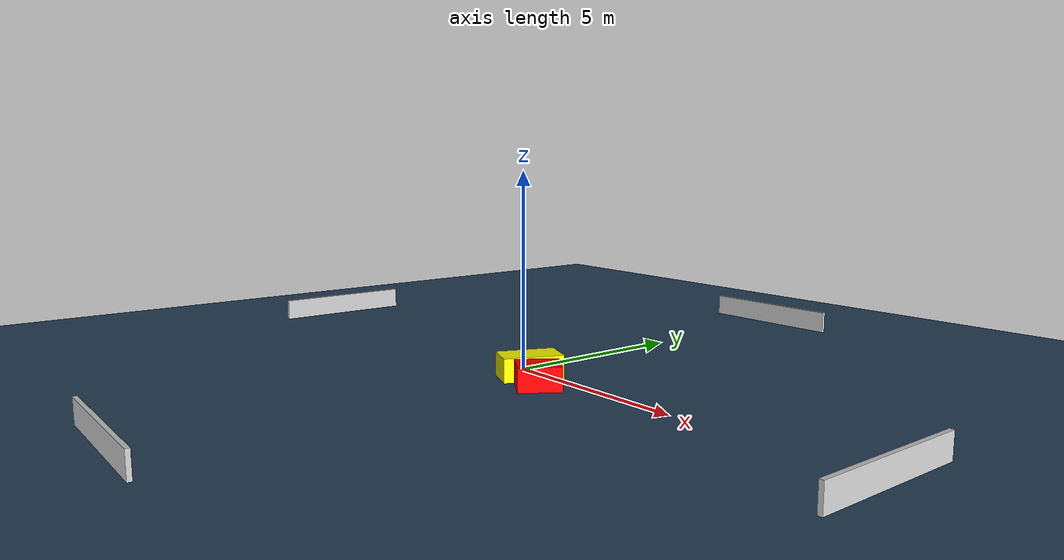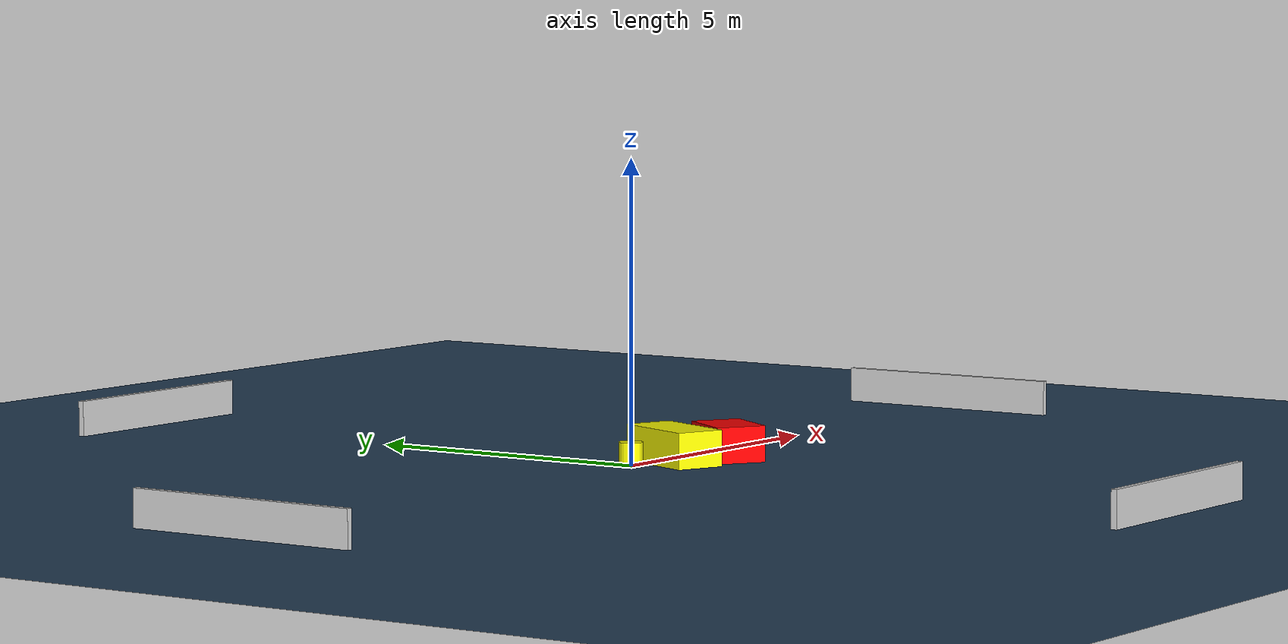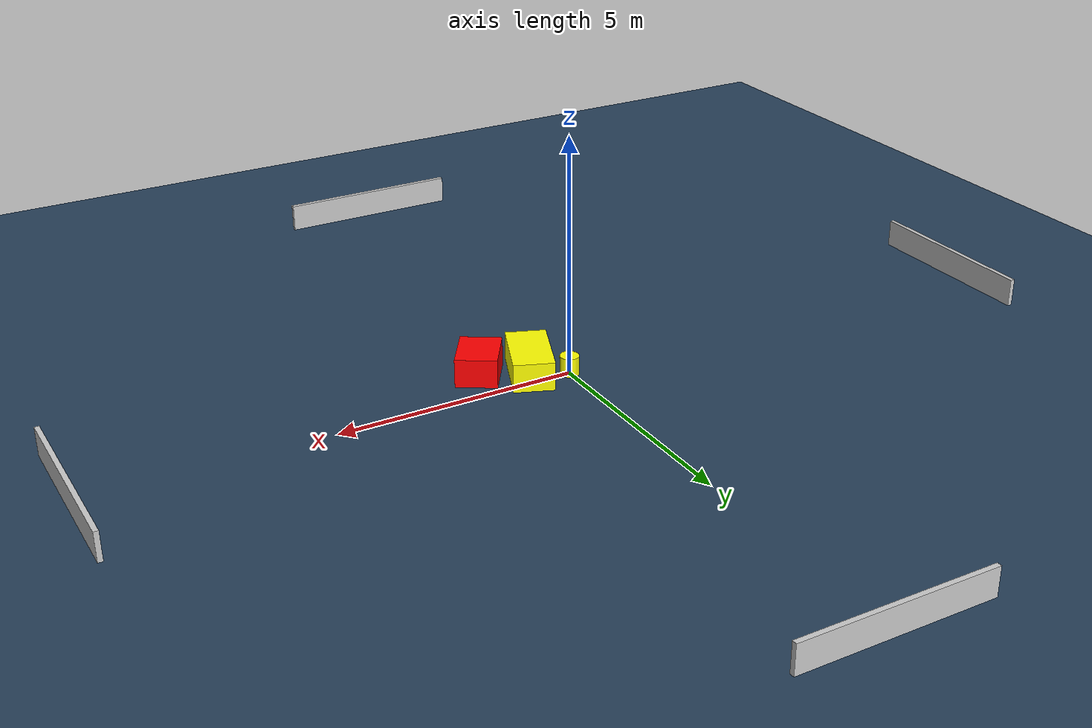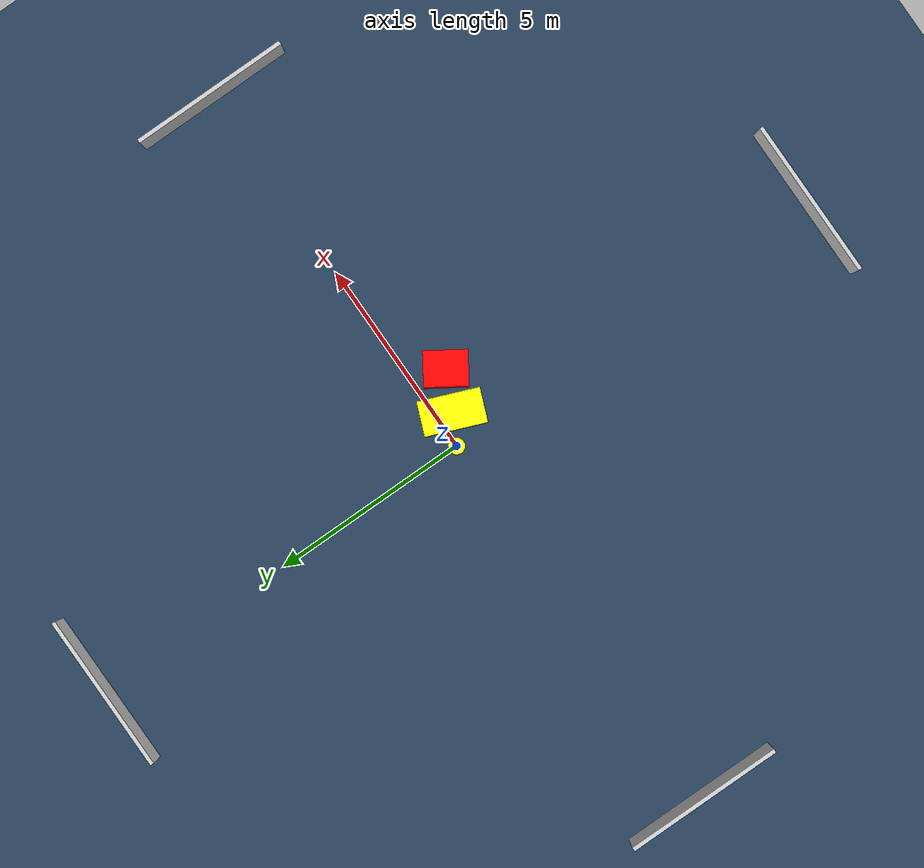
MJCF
<?xml version="1.0" ?>
<mujoco model="generated_environment">
  <option timestep="0.01" integrator="RK4" cone="elliptic"/>
  <default>
    <geom density="1"/>
  </default>
  <asset>
    <texture builtin="gradient" height="3072" name="skybox" rgb1="0.3 0.5 0.7" rgb2="0 0 0" type="skybox" width="512"/>
    <texture builtin="checker" height="300" name="groundplane" rgb1="0.2 0.3 0.4" rgb2="0.1 0.2 0.3" type="2d" width="300"/>
    <material name="groundplane" reflectance="0.2" texrepeat="5 5" texture="groundplane"/>
  </asset>
  <worldbody>
    <light dir="0 0 -1" directional="true" pos="0 0 1.5"/>
    <geom condim="3" friction="0.5 0.005 0.001" material="groundplane" name="floor" pos="0 0 0" size="0 0 0.05" type="plane"/>
    <body name="walls">
      <geom name="wall_1" condim="4" pos="-10.0 0.0 0.3" rgba="0.800000011920929 0.800000011920929 0.800000011920929 1.0" size="0.05 2.0 0.3" type="box"/>
      <geom name="wall_2" condim="4" pos="10.0 0.0 0.3" rgba="0.800000011920929 0.800000011920929 0.800000011920929 1.0" size="0.05 2.0 0.3" type="box"/>
      <geom name="wall_3" condim="4" pos="0.0 -10.0 0.3" rgba="0.800000011920929 0.800000011920929 0.800000011920929 1.0" size="2.0 0.05 0.3" type="box"/>
      <geom name="wall_4" condim="4" pos="0.0 10.0 0.3" rgba="0.800000011920929 0.800000011920929 0.800000011920929 1.0" size="2.0 0.05 0.3" type="box"/>
    </body>
    <body name="robot">
      <joint name="joint_x" type="slide" pos="0 0 0" axis="1 0 0"/>
      <joint name="joint_y" type="slide" pos="0 0 0" axis="0 1 0"/>
      <geom name="robot" type="cylinder" pos="0.0 0.0 0.2" size="0.2 0.2 0.0" mass="5.0" friction="1.0 0.005 0.0001" condim="4" rgba="1.0 1.0 0.0 1.0"/>
    </body>
    <body name="obstacle_1_movable">
      <geom name="obstacle_1_movable" condim="4" pos="0.7073522124575878 -0.3661724749823182 0.3" euler="0 0 68.27697299581564" friction="0.0 0.005 0.001" rgba="1.0 1.0 0.0 1.0" size="0.7570444495341444 0.42120748695612076 0.3" type="box" mass="0.1"/>
      <joint type="free"/>
    </body>
    <body name="obstacle_2_static">
      <geom name="obstacle_2_static" condim="4" pos="1.6211113688450063 -0.8223076172336802 0.3" euler="0 0 147.11101455710948" friction="0.0 0.005 0.001" rgba="1.0 0.0 0.0 1.0" size="0.42746928950363094 0.5310110756527462 0.3" type="box"/>
    </body>
  </worldbody>
  <actuator>
    <motor name="actuator_x" joint="joint_x" gear="1" ctrlrange="-1 1"/>
    <motor name="actuator_y" joint="joint_y" gear="1" ctrlrange="-1 1"/>
  </actuator>
</mujoco>
